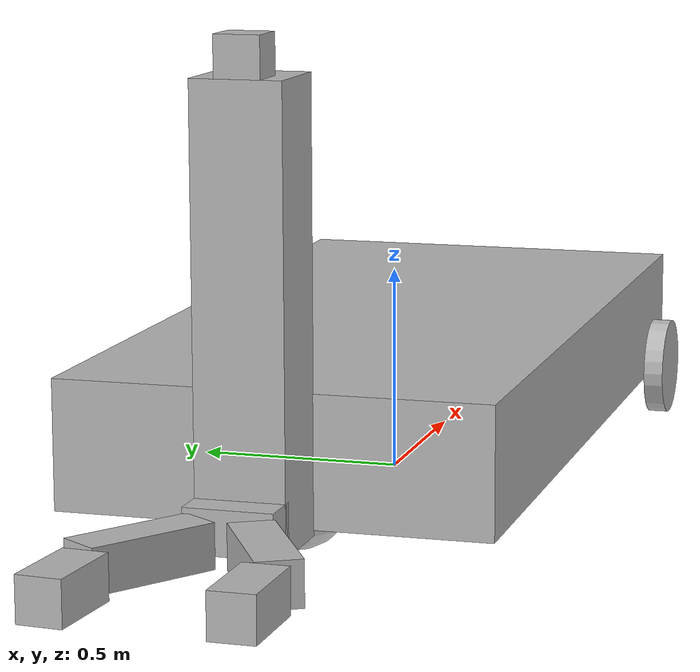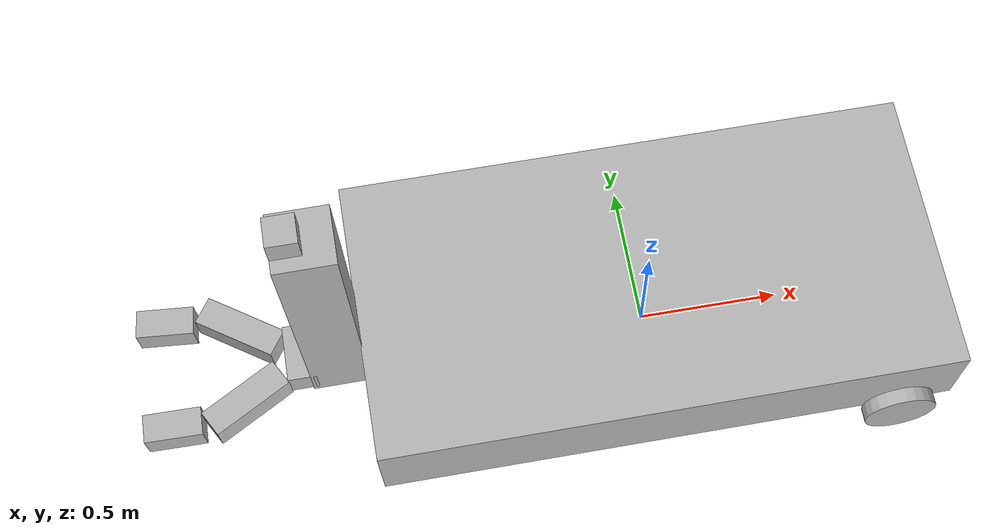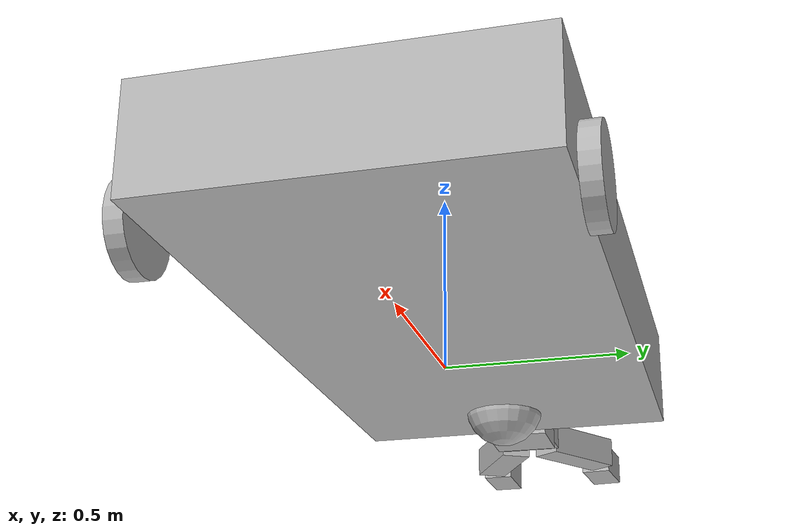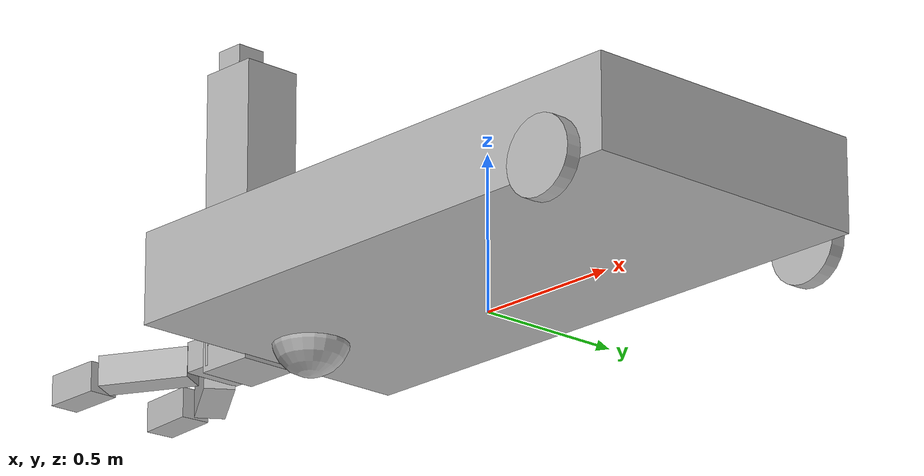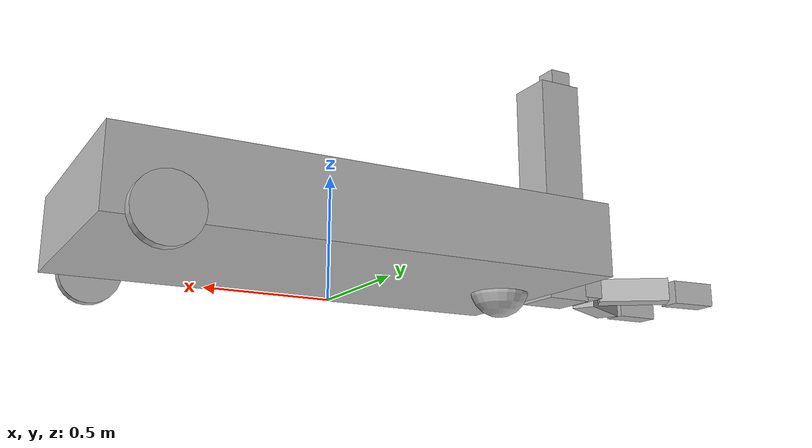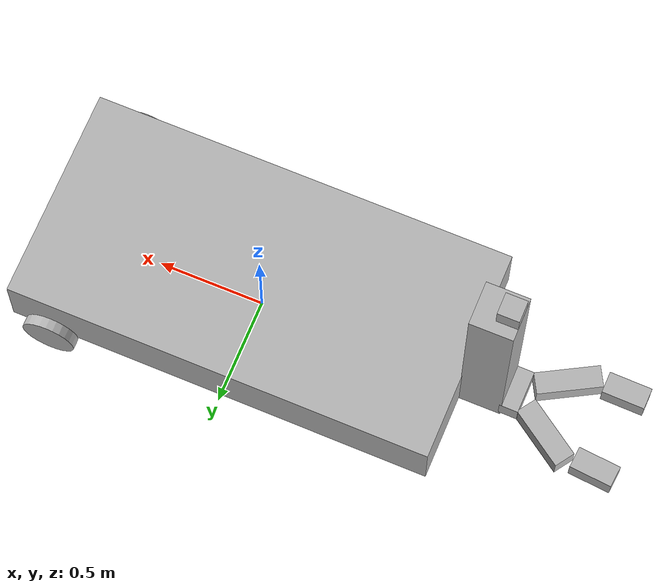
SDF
<?xml version='1.0'?>
<sdf version='1.6'>
  <model name='healthbot'>
    <link name='chassis'>
      <pose frame=''>-1e-06 -0 0.25 0 -0 0</pose>
      <inertial>
        <mass>20</mass>
        <pose frame=''>-0.1 0 -0.1 0 -0 0</pose>
        <inertia>
          <ixx>0.5</ixx>
          <iyy>1</iyy>
          <izz>0.1</izz>
          <ixy>0</ixy>
          <ixz>0</ixz>
          <iyz>0</iyz>
        </inertia>
      </inertial>
      <self_collide>0</self_collide>
      <enable_wind>0</enable_wind>
      <kinematic>0</kinematic>
      <visual name='visual'>
        <geometry>
          <box>
            <size>2 1 0.3</size>
          </box>
        </geometry>
        <material>
          <shader type='pixel'/>
          <emissive>0 0 0 1</emissive>
        </material>
        <pose frame=''>0 0 0 0 -0 0</pose>
        <transparency>0</transparency>
        <cast_shadows>1</cast_shadows>
      </visual>
      <visual name='caster_visual'>
        <pose frame=''>-0.8 0 -0.125 0 -0 0</pose>
        <geometry>
          <sphere>
            <radius>0.125</radius>
          </sphere>
        </geometry>
        <material>
          <shader type='pixel'/>
          <emissive>0 0 0 1</emissive>
        </material>
        <transparency>0</transparency>
        <cast_shadows>1</cast_shadows>
      </visual>
      <collision name='caster_collision'>
        <laser_retro>0</laser_retro>
        <max_contacts>10</max_contacts>
        <pose frame=''>-0.8 0 -0.125 0 -0 0</pose>
        <geometry>
          <sphere>
            <radius>0.125</radius>
          </sphere>
        </geometry>
        <surface>
          <friction>
            <ode>
              <mu>0</mu>
              <mu2>0</mu2>
              <fdir1>0 0 0</fdir1>
              <slip1>0</slip1>
              <slip2>0</slip2>
            </ode>
            <torsional>
              <coefficient>1</coefficient>
              <patch_radius>0</patch_radius>
              <surface_radius>0</surface_radius>
              <use_patch_radius>1</use_patch_radius>
              <ode>
                <slip>0</slip>
              </ode>
            </torsional>
          </friction>
          <bounce>
            <restitution_coefficient>0</restitution_coefficient>
            <threshold>1e+06</threshold>
          </bounce>
          <contact>
            <collide_without_contact>0</collide_without_contact>
            <collide_without_contact_bitmask>1</collide_without_contact_bitmask>
            <collide_bitmask>1</collide_bitmask>
            <ode>
              <soft_cfm>0</soft_cfm>
              <soft_erp>0.2</soft_erp>
              <kp>1e+13</kp>
              <kd>1</kd>
              <max_vel>0.01</max_vel>
              <min_depth>0</min_depth>
            </ode>
            <bullet>
              <split_impulse>1</split_impulse>
              <split_impulse_penetration_threshold>-0.01</split_impulse_penetration_threshold>
              <soft_cfm>0</soft_cfm>
              <soft_erp>0.2</soft_erp>
              <kp>1e+13</kp>
              <kd>1</kd>
            </bullet>
          </contact>
        </surface>
      </collision>
      <collision name='collision'>
        <laser_retro>0</laser_retro>
        <max_contacts>10</max_contacts>
        <pose frame=''>0 0 0 0 -0 0</pose>
        <geometry>
          <box>
            <size>2 1 0.3</size>
          </box>
        </geometry>
        <surface>
          <friction>
            <ode>
              <mu>1</mu>
              <mu2>1</mu2>
              <fdir1>0 0 0</fdir1>
              <slip1>0</slip1>
              <slip2>0</slip2>
            </ode>
            <torsional>
              <coefficient>1</coefficient>
              <patch_radius>0</patch_radius>
              <surface_radius>0</surface_radius>
              <use_patch_radius>1</use_patch_radius>
              <ode>
                <slip>0</slip>
              </ode>
            </torsional>
          </friction>
          <bounce>
            <restitution_coefficient>0</restitution_coefficient>
            <threshold>1e+06</threshold>
          </bounce>
          <contact>
            <collide_without_contact>0</collide_without_contact>
            <collide_without_contact_bitmask>1</collide_without_contact_bitmask>
            <collide_bitmask>1</collide_bitmask>
            <ode>
              <soft_cfm>0</soft_cfm>
              <soft_erp>0.2</soft_erp>
              <kp>1e+13</kp>
              <kd>1</kd>
              <max_vel>0.01</max_vel>
              <min_depth>0</min_depth>
            </ode>
            <bullet>
              <split_impulse>1</split_impulse>
              <split_impulse_penetration_threshold>-0.01</split_impulse_penetration_threshold>
              <soft_cfm>0</soft_cfm>
              <soft_erp>0.2</soft_erp>
              <kp>1e+13</kp>
              <kd>1</kd>
            </bullet>
          </contact>
        </surface>
      </collision>
    </link>

    <link name='camera'>
      <inertial>
        <mass>0.1</mass>
        <inertia>
          <ixx>0.000166667</ixx>
          <iyy>0.000166667</iyy>
          <izz>0.000166667</izz>
          <ixy>0</ixy>
          <ixz>0</ixz>
          <iyz>0</iyz>
        </inertia>
      </inertial>
      <sensor name='camera' type='camera'>
        <camera name='__default__'>
          <horizontal_fov>1.047</horizontal_fov>
          <image>
            <width>320</width>
            <height>240</height>
          </image>
          <clip>
            <near>0.1</near>
            <far>100</far>
          </clip>
        </camera>
 <plugin name="camera_controller" filename="libgazebo_ros_camera.so">
        <always_on>1</always_on>
        <update_rate>30</update_rate>
        <visualize>1</visualize>

 <cameraName>rrbot/camera1</cameraName>
        <imageTopicName>image_raw</imageTopicName>
        <cameraInfoTopicName>camera_info</cameraInfoTopicName>
<frameName>camera_link</frameName>
        <hackBaseline>0.07</hackBaseline>
        <distortionK1>0.0</distortionK1>
        <distortionK2>0.0</distortionK2>
        <distortionK3>0.0</distortionK3>
        <distortionT1>0.0</distortionT1>
        <distortionT2>0.0</distortionT2>

      </plugin>
      </sensor>
      <self_collide>0</self_collide>
      <enable_wind>0</enable_wind>
      <kinematic>0</kinematic>
      <pose frame=''>-1.14659 -0.004053 1.1283 0 0 -3.13928</pose>
      <visual name='visual'>
        <geometry>
          <box>
            <size>0.1 0.1 0.1</size>
          </box>
        </geometry>
        <pose frame=''>0 0 0 0 -0 0</pose>
        <transparency>0</transparency>
        <cast_shadows>1</cast_shadows>
      </visual>
      <collision name='collision'>
        <laser_retro>0</laser_retro>
        <max_contacts>10</max_contacts>
        <pose frame=''>0 0 0 0 -0 0</pose>
        <geometry>
          <box>
            <size>0.1 0.1 0.1</size>
          </box>
        </geometry>
        <surface>
          <friction>
            <ode>
              <mu>1</mu>
              <mu2>1</mu2>
              <fdir1>0 0 0</fdir1>
              <slip1>0</slip1>
              <slip2>0</slip2>
            </ode>
            <torsional>
              <coefficient>1</coefficient>
              <patch_radius>0</patch_radius>
              <surface_radius>0</surface_radius>
              <use_patch_radius>1</use_patch_radius>
              <ode>
                <slip>0</slip>
              </ode>
            </torsional>
          </friction>
          <bounce>
            <restitution_coefficient>0</restitution_coefficient>
            <threshold>1e+06</threshold>
          </bounce>
          <contact>
            <collide_without_contact>0</collide_without_contact>
            <collide_without_contact_bitmask>1</collide_without_contact_bitmask>
            <collide_bitmask>1</collide_bitmask>
            <ode>
              <soft_cfm>0</soft_cfm>
              <soft_erp>0.2</soft_erp>
              <kp>1e+13</kp>
              <kd>1</kd>
              <max_vel>0.01</max_vel>
              <min_depth>0</min_depth>
            </ode>
            <bullet>
              <split_impulse>1</split_impulse>
              <split_impulse_penetration_threshold>-0.01</split_impulse_penetration_threshold>
              <soft_cfm>0</soft_cfm>
              <soft_erp>0.2</soft_erp>
              <kp>1e+13</kp>
              <kd>1</kd>
            </bullet>
          </contact>
        </surface>
      </collision>
    </link>

    <link name='left_finger'>
      <pose frame=''>-1.41979 0.13564 0.14391 0 -0 0.974562</pose>
      <inertial>
        <inertia>
          <ixx>0.01</ixx>
          <ixy>0</ixy>
          <ixz>0</ixz>
          <iyy>0.01</iyy>
          <iyz>0</iyz>
          <izz>0.01</izz>
        </inertia>
        <mass>0.1</mass>
        <pose frame=''>0 0 0 0 -0 0</pose>
      </inertial>
      <self_collide>0</self_collide>
      <enable_wind>0</enable_wind>
      <kinematic>0</kinematic>
      <visual name='visual'>
        <geometry>
          <box>
            <size>0.1 0.3 0.1</size>
          </box>
        </geometry>
        <material>
          <script>
            <uri>__default__</uri>
            <name>__default__</name>
          </script>
          <shader type='pixel'/>
          <emissive>0 0 0 1</emissive>
        </material>
        <pose frame=''>0 0 0 0 -0 0</pose>
        <transparency>0</transparency>
        <cast_shadows>1</cast_shadows>
      </visual>
      <collision name='collision'>
        <laser_retro>0</laser_retro>
        <max_contacts>10</max_contacts>
        <pose frame=''>0 0 0 0 -0 0</pose>
        <geometry>
          <box>
            <size>0.1 0.3 0.1</size>
          </box>
        </geometry>
        <surface>
          <friction>
            <ode>
              <mu>1</mu>
              <mu2>1</mu2>
              <fdir1>0 0 0</fdir1>
              <slip1>0</slip1>
              <slip2>0</slip2>
            </ode>
            <torsional>
              <coefficient>1</coefficient>
              <patch_radius>0</patch_radius>
              <surface_radius>0</surface_radius>
              <use_patch_radius>1</use_patch_radius>
              <ode>
                <slip>0</slip>
              </ode>
            </torsional>
          </friction>
          <bounce>
            <restitution_coefficient>0</restitution_coefficient>
            <threshold>1e+06</threshold>
          </bounce>
          <contact>
            <collide_without_contact>0</collide_without_contact>
            <collide_without_contact_bitmask>1</collide_without_contact_bitmask>
            <collide_bitmask>1</collide_bitmask>
            <ode>
              <soft_cfm>0</soft_cfm>
              <soft_erp>0.2</soft_erp>
              <kp>1e+13</kp>
              <kd>1</kd>
              <max_vel>0.01</max_vel>
              <min_depth>0</min_depth>
            </ode>
            <bullet>
              <split_impulse>1</split_impulse>
              <split_impulse_penetration_threshold>-0.01</split_impulse_penetration_threshold>
              <soft_cfm>0</soft_cfm>
              <soft_erp>0.2</soft_erp>
              <kp>1e+13</kp>
              <kd>1</kd>
            </bullet>
          </contact>
        </surface>
      </collision>
    </link>
    <link name='left_finger_tip'>
      <pose frame=''>-1.6777 0.198064 0.14139 0 0 -1.65425</pose>
      <inertial>
        <inertia>
          <ixx>0.01</ixx>
          <ixy>0</ixy>
          <ixz>0</ixz>
          <iyy>0.01</iyy>
          <iyz>0</iyz>
          <izz>0.01</izz>
        </inertia>
        <mass>0.1</mass>
        <pose frame=''>0 0 0 0 -0 0</pose>
      </inertial>
      <self_collide>0</self_collide>
      <enable_wind>0</enable_wind>
      <kinematic>0</kinematic>
      <visual name='visual'>
        <geometry>
          <box>
            <size>0.1 0.2 0.1</size>
          </box>
        </geometry>
        <material>
          <script>
            <uri>__default__</uri>
            <name>__default__</name>
          </script>
          <shader type='pixel'/>
          <emissive>0 0 0 1</emissive>
        </material>
        <pose frame=''>0 0 0 0 -0 0</pose>
        <transparency>0</transparency>
        <cast_shadows>1</cast_shadows>
      </visual>
      <collision name='collision'>
        <laser_retro>0</laser_retro>
        <max_contacts>10</max_contacts>
        <pose frame=''>0 0 0 0 -0 0</pose>
        <geometry>
          <box>
            <size>0.1 0.2 0.1</size>
          </box>
        </geometry>
        <surface>
          <friction>
            <ode>
              <mu>1</mu>
              <mu2>1</mu2>
              <fdir1>0 0 0</fdir1>
              <slip1>0</slip1>
              <slip2>0</slip2>
            </ode>
            <torsional>
              <coefficient>1</coefficient>
              <patch_radius>0</patch_radius>
              <surface_radius>0</surface_radius>
              <use_patch_radius>1</use_patch_radius>
              <ode>
                <slip>0</slip>
              </ode>
            </torsional>
          </friction>
          <bounce>
            <restitution_coefficient>0</restitution_coefficient>
            <threshold>1e+06</threshold>
          </bounce>
          <contact>
            <collide_without_contact>0</collide_without_contact>
            <collide_without_contact_bitmask>1</collide_without_contact_bitmask>
            <collide_bitmask>1</collide_bitmask>
            <ode>
              <soft_cfm>0</soft_cfm>
              <soft_erp>0.2</soft_erp>
              <kp>1e+13</kp>
              <kd>1</kd>
              <max_vel>0.01</max_vel>
              <min_depth>0</min_depth>
            </ode>
            <bullet>
              <split_impulse>1</split_impulse>
              <split_impulse_penetration_threshold>-0.01</split_impulse_penetration_threshold>
              <soft_cfm>0</soft_cfm>
              <soft_erp>0.2</soft_erp>
              <kp>1e+13</kp>
              <kd>1</kd>
            </bullet>
          </contact>
        </surface>
      </collision>
    </link>
    <link name='left_wheel'>
      <pose frame=''>0.800001 0.535001 0.125 0.000485 1.5707 1.57117</pose>
      <self_collide>0</self_collide>
      <inertial>
        <pose frame=''>0 0 0 0 -0 0</pose>
        <inertia>
          <ixx>1</ixx>
          <ixy>0</ixy>
          <ixz>0</ixz>
          <iyy>1</iyy>
          <iyz>0</iyz>
          <izz>1</izz>
        </inertia>
        <mass>1</mass>
      </inertial>
      <enable_wind>0</enable_wind>
      <kinematic>0</kinematic>
      <visual name='visual'>
        <geometry>
          <cylinder>
            <radius>0.125</radius>
            <length>0.05</length>
          </cylinder>
        </geometry>
        <material>
          <shader type='pixel'/>
          <emissive>0 0 0 1</emissive>
        </material>
        <pose frame=''>0 0 0 0 -0 0</pose>
        <transparency>0</transparency>
        <cast_shadows>1</cast_shadows>
      </visual>
      <collision name='collision'>
        <laser_retro>0</laser_retro>
        <max_contacts>10</max_contacts>
        <pose frame=''>0 0 0 0 -0 0</pose>
        <geometry>
          <cylinder>
            <radius>0.125</radius>
            <length>0.05</length>
          </cylinder>
        </geometry>
        <surface>
          <friction>
            <ode>
              <mu>1</mu>
              <mu2>1</mu2>
              <fdir1>0 0 0</fdir1>
              <slip1>0</slip1>
              <slip2>0</slip2>
            </ode>
            <torsional>
              <coefficient>1</coefficient>
              <patch_radius>0</patch_radius>
              <surface_radius>0</surface_radius>
              <use_patch_radius>1</use_patch_radius>
              <ode>
                <slip>0</slip>
              </ode>
            </torsional>
          </friction>
          <bounce>
            <restitution_coefficient>0</restitution_coefficient>
            <threshold>1e+06</threshold>
          </bounce>
          <contact>
            <collide_without_contact>0</collide_without_contact>
            <collide_without_contact_bitmask>1</collide_without_contact_bitmask>
            <collide_bitmask>1</collide_bitmask>
            <ode>
              <soft_cfm>0</soft_cfm>
              <soft_erp>0.2</soft_erp>
              <kp>1e+13</kp>
              <kd>1</kd>
              <max_vel>0.01</max_vel>
              <min_depth>0</min_depth>
            </ode>
            <bullet>
              <split_impulse>1</split_impulse>
              <split_impulse_penetration_threshold>-0.01</split_impulse_penetration_threshold>
              <soft_cfm>0</soft_cfm>
              <soft_erp>0.2</soft_erp>
              <kp>1e+13</kp>
              <kd>1</kd>
            </bullet>
          </contact>
        </surface>
      </collision>
    </link>
    <link name='palm'>
      <pose frame=''>-1.2245 -8.7e-05 0.156799 0 -0 3.13532</pose>
      <inertial>
        <inertia>
          <ixx>0.01</ixx>
          <ixy>0</ixy>
          <ixz>0</ixz>
          <iyy>0.01</iyy>
          <iyz>0</iyz>
          <izz>0.01</izz>
        </inertia>
        <mass>0.5</mass>
        <pose frame=''>0 0 0 0 -0 0</pose>
      </inertial>
      <self_collide>0</self_collide>
      <enable_wind>0</enable_wind>
      <kinematic>0</kinematic>
      <visual name='visual'>
        <geometry>
          <box>
            <size>0.1 0.2 0.1</size>
          </box>
        </geometry>
        <material>
          <script>
            <uri>__default__</uri>
            <name>__default__</name>
          </script>
          <shader type='pixel'/>
          <emissive>0 0 0 1</emissive>
        </material>
        <pose frame=''>0 0 0 0 -0 0</pose>
        <transparency>0</transparency>
        <cast_shadows>1</cast_shadows>
      </visual>
      <collision name='collision'>
        <laser_retro>0</laser_retro>
        <max_contacts>10</max_contacts>
        <pose frame=''>0 0 0 0 -0 0</pose>
        <geometry>
          <box>
            <size>0.1 0.2 0.1</size>
          </box>
        </geometry>
        <surface>
          <friction>
            <ode>
              <mu>1</mu>
              <mu2>1</mu2>
              <fdir1>0 0 0</fdir1>
              <slip1>0</slip1>
              <slip2>0</slip2>
            </ode>
            <torsional>
              <coefficient>1</coefficient>
              <patch_radius>0</patch_radius>
              <surface_radius>0</surface_radius>
              <use_patch_radius>1</use_patch_radius>
              <ode>
                <slip>0</slip>
              </ode>
            </torsional>
          </friction>
          <bounce>
            <restitution_coefficient>0</restitution_coefficient>
            <threshold>1e+06</threshold>
          </bounce>
          <contact>
            <collide_without_contact>0</collide_without_contact>
            <collide_without_contact_bitmask>1</collide_without_contact_bitmask>
            <collide_bitmask>1</collide_bitmask>
            <ode>
              <soft_cfm>0</soft_cfm>
              <soft_erp>0.2</soft_erp>
              <kp>1e+13</kp>
              <kd>1</kd>
              <max_vel>0.01</max_vel>
              <min_depth>0</min_depth>
            </ode>
            <bullet>
              <split_impulse>1</split_impulse>
              <split_impulse_penetration_threshold>-0.01</split_impulse_penetration_threshold>
              <soft_cfm>0</soft_cfm>
              <soft_erp>0.2</soft_erp>
              <kp>1e+13</kp>
              <kd>1</kd>
            </bullet>
          </contact>
        </surface>
      </collision>
    </link>
    <link name='right_finger'>
      <pose frame=''>-1.42662 -0.131687 0.144156 -0 -0 -1.06078</pose>
      <inertial>
        <inertia>
          <ixx>0.01</ixx>
          <ixy>0</ixy>
          <ixz>0</ixz>
          <iyy>0.01</iyy>
          <iyz>0</iyz>
          <izz>0.01</izz>
        </inertia>
        <mass>0.1</mass>
        <pose frame=''>0 0 0 0 -0 0</pose>
      </inertial>
      <self_collide>0</self_collide>
      <enable_wind>0</enable_wind>
      <kinematic>0</kinematic>
      <visual name='visual'>
        <geometry>
          <box>
            <size>0.1 0.3 0.1</size>
          </box>
        </geometry>
        <material>
          <script>
            <uri>__default__</uri>
            <name>__default__</name>
          </script>
          <shader type='pixel'/>
        </material>
        <pose frame=''>0 0 0 0 -0 0</pose>
        <transparency>0</transparency>
        <cast_shadows>1</cast_shadows>
      </visual>
      <collision name='collision'>
        <laser_retro>0</laser_retro>
        <max_contacts>10</max_contacts>
        <pose frame=''>0 0 0 0 -0 0</pose>
        <geometry>
          <box>
            <size>0.1 0.3 0.1</size>
          </box>
        </geometry>
        <surface>
          <friction>
            <ode>
              <mu>1</mu>
              <mu2>1</mu2>
              <fdir1>0 0 0</fdir1>
              <slip1>0</slip1>
              <slip2>0</slip2>
            </ode>
            <torsional>
              <coefficient>1</coefficient>
              <patch_radius>0</patch_radius>
              <surface_radius>0</surface_radius>
              <use_patch_radius>1</use_patch_radius>
              <ode>
                <slip>0</slip>
              </ode>
            </torsional>
          </friction>
          <bounce>
            <restitution_coefficient>0</restitution_coefficient>
            <threshold>1e+06</threshold>
          </bounce>
          <contact>
            <collide_without_contact>0</collide_without_contact>
            <collide_without_contact_bitmask>1</collide_without_contact_bitmask>
            <collide_bitmask>1</collide_bitmask>
            <ode>
              <soft_cfm>0</soft_cfm>
              <soft_erp>0.2</soft_erp>
              <kp>1e+13</kp>
              <kd>1</kd>
              <max_vel>0.01</max_vel>
              <min_depth>0</min_depth>
            </ode>
            <bullet>
              <split_impulse>1</split_impulse>
              <split_impulse_penetration_threshold>-0.01</split_impulse_penetration_threshold>
              <soft_cfm>0</soft_cfm>
              <soft_erp>0.2</soft_erp>
              <kp>1e+13</kp>
              <kd>1</kd>
            </bullet>
          </contact>
        </surface>
      </collision>
    </link>
    <link name='right_finger_tip'>
      <pose frame=''>-1.68284 -0.185107 0.143045 0 0 -1.584</pose>
      <inertial>
        <inertia>
          <ixx>0.01</ixx>
          <ixy>0</ixy>
          <ixz>0</ixz>
          <iyy>0.01</iyy>
          <iyz>0</iyz>
          <izz>0.01</izz>
        </inertia>
        <mass>0.1</mass>
        <pose frame=''>0 0 0 0 -0 0</pose>
      </inertial>
      <self_collide>0</self_collide>
      <enable_wind>0</enable_wind>
      <kinematic>0</kinematic>
      <visual name='visual'>
        <geometry>
          <box>
            <size>0.1 0.2 0.1</size>
          </box>
        </geometry>
        <material>
          <script>
            <uri>__default__</uri>
            <name>__default__</name>
          </script>
          <shader type='pixel'/>
        </material>
        <pose frame=''>0 0 0 0 -0 0</pose>
        <transparency>0</transparency>
        <cast_shadows>1</cast_shadows>
      </visual>
      <collision name='collision'>
        <laser_retro>0</laser_retro>
        <max_contacts>10</max_contacts>
        <pose frame=''>0 0 0 0 -0 0</pose>
        <geometry>
          <box>
            <size>0.1 0.2 0.1</size>
          </box>
        </geometry>
        <surface>
          <friction>
            <ode>
              <mu>1</mu>
              <mu2>1</mu2>
              <fdir1>0 0 0</fdir1>
              <slip1>0</slip1>
              <slip2>0</slip2>
            </ode>
            <torsional>
              <coefficient>1</coefficient>
              <patch_radius>0</patch_radius>
              <surface_radius>0</surface_radius>
              <use_patch_radius>1</use_patch_radius>
              <ode>
                <slip>0</slip>
              </ode>
            </torsional>
          </friction>
          <bounce>
            <restitution_coefficient>0</restitution_coefficient>
            <threshold>1e+06</threshold>
          </bounce>
          <contact>
            <collide_without_contact>0</collide_without_contact>
            <collide_without_contact_bitmask>1</collide_without_contact_bitmask>
            <collide_bitmask>1</collide_bitmask>
            <ode>
              <soft_cfm>0</soft_cfm>
              <soft_erp>0.2</soft_erp>
              <kp>1e+13</kp>
              <kd>1</kd>
              <max_vel>0.01</max_vel>
              <min_depth>0</min_depth>
            </ode>
            <bullet>
              <split_impulse>1</split_impulse>
              <split_impulse_penetration_threshold>-0.01</split_impulse_penetration_threshold>
              <soft_cfm>0</soft_cfm>
              <soft_erp>0.2</soft_erp>
              <kp>1e+13</kp>
              <kd>1</kd>
            </bullet>
          </contact>
        </surface>
      </collision>
    </link>
    <link name='right_wheel'>
      <pose frame=''>0.800001 -0.535 0.125 0.000485 1.5707 1.57117</pose>
      <self_collide>0</self_collide>
      <inertial>
        <pose frame=''>0 0 0 0 -0 0</pose>
        <inertia>
          <ixx>1</ixx>
          <ixy>0</ixy>
          <ixz>0</ixz>
          <iyy>1</iyy>
          <iyz>0</iyz>
          <izz>1</izz>
        </inertia>
        <mass>1</mass>
      </inertial>
      <enable_wind>0</enable_wind>
      <kinematic>0</kinematic>
      <visual name='visual'>
        <geometry>
          <cylinder>
            <radius>0.125</radius>
            <length>0.05</length>
          </cylinder>
        </geometry>
        <material>
          <shader type='pixel'/>
        </material>
        <pose frame=''>0 0 0 0 -0 0</pose>
        <transparency>0</transparency>
        <cast_shadows>1</cast_shadows>
      </visual>
      <collision name='collision'>
        <laser_retro>0</laser_retro>
        <max_contacts>10</max_contacts>
        <pose frame=''>0 0 0 0 -0 0</pose>
        <geometry>
          <cylinder>
            <radius>0.125</radius>
            <length>0.05</length>
          </cylinder>
        </geometry>
        <surface>
          <friction>
            <ode>
              <mu>1</mu>
              <mu2>1</mu2>
              <fdir1>0 0 0</fdir1>
              <slip1>0</slip1>
              <slip2>0</slip2>
            </ode>
            <torsional>
              <coefficient>1</coefficient>
              <patch_radius>0</patch_radius>
              <surface_radius>0</surface_radius>
              <use_patch_radius>1</use_patch_radius>
              <ode>
                <slip>0</slip>
              </ode>
            </torsional>
          </friction>
          <bounce>
            <restitution_coefficient>0</restitution_coefficient>
            <threshold>1e+06</threshold>
          </bounce>
          <contact>
            <collide_without_contact>0</collide_without_contact>
            <collide_without_contact_bitmask>1</collide_without_contact_bitmask>
            <collide_bitmask>1</collide_bitmask>
            <ode>
              <soft_cfm>0</soft_cfm>
              <soft_erp>0.2</soft_erp>
              <kp>1e+13</kp>
              <kd>1</kd>
              <max_vel>0.01</max_vel>
              <min_depth>0</min_depth>
            </ode>
            <bullet>
              <split_impulse>1</split_impulse>
              <split_impulse_penetration_threshold>-0.01</split_impulse_penetration_threshold>
              <soft_cfm>0</soft_cfm>
              <soft_erp>0.2</soft_erp>
              <kp>1e+13</kp>
              <kd>1</kd>
            </bullet>
          </contact>
        </surface>
      </collision>
    </link>
    <link name='riser'>
      <pose frame=''>-1.09676 7e-06 0.586937 0 0 -3.13784</pose>
      <inertial>
        <pose frame=''>0 0 -0.5 0 -0 0</pose>
        <inertia>
          <ixx>0.01</ixx>
          <ixy>0</ixy>
          <ixz>0</ixz>
          <iyy>0.01</iyy>
          <iyz>0</iyz>
          <izz>0.01</izz>
        </inertia>
        <mass>10</mass>
      </inertial>
      <self_collide>0</self_collide>
      <enable_wind>0</enable_wind>
      <kinematic>0</kinematic>
      <visual name='visual'>
        <geometry>
          <box>
            <size>0.2 0.2 1</size>
          </box>
        </geometry>
        <material>
          <script>
            <uri>__default__</uri>
            <name>__default__</name>
          </script>
          <shader type='pixel'/>
          <emissive>0 0 0 1</emissive>
        </material>
        <pose frame=''>0 0 0 0 -0 0</pose>
        <transparency>0</transparency>
        <cast_shadows>1</cast_shadows>
      </visual>
      <collision name='collision'>
        <laser_retro>0</laser_retro>
        <max_contacts>10</max_contacts>
        <pose frame=''>0 0 0 0 -0 0</pose>
        <geometry>
          <box>
            <size>0.2 0.2 1</size>
          </box>
        </geometry>
        <surface>
          <friction>
            <ode>
              <mu>1</mu>
              <mu2>1</mu2>
              <fdir1>0 0 0</fdir1>
              <slip1>0</slip1>
              <slip2>0</slip2>
            </ode>
            <torsional>
              <coefficient>1</coefficient>
              <patch_radius>0</patch_radius>
              <surface_radius>0</surface_radius>
              <use_patch_radius>1</use_patch_radius>
              <ode>
                <slip>0</slip>
              </ode>
            </torsional>
          </friction>
          <bounce>
            <restitution_coefficient>0</restitution_coefficient>
            <threshold>1e+06</threshold>
          </bounce>
          <contact>
            <collide_without_contact>0</collide_without_contact>
            <collide_without_contact_bitmask>1</collide_without_contact_bitmask>
            <collide_bitmask>1</collide_bitmask>
            <ode>
              <soft_cfm>0</soft_cfm>
              <soft_erp>0.2</soft_erp>
              <kp>1e+13</kp>
              <kd>1</kd>
              <max_vel>0.01</max_vel>
              <min_depth>0</min_depth>
            </ode>
            <bullet>
              <split_impulse>1</split_impulse>
              <split_impulse_penetration_threshold>-0.01</split_impulse_penetration_threshold>
              <soft_cfm>0</soft_cfm>
              <soft_erp>0.2</soft_erp>
              <kp>1e+13</kp>
              <kd>1</kd>
            </bullet>
          </contact>
        </surface>
      </collision>
    </link>
    <joint name='chassis_JOINT_0' type='fixed'>
      <parent>riser</parent>
      <child>camera</child>
      <pose frame=''>0 0 0 0 -0 0</pose>
      <physics>
        <ode>
          <limit>
            <cfm>0</cfm>
            <erp>0.2</erp>
          </limit>
          <suspension>
            <cfm>0</cfm>
            <erp>0.2</erp>
          </suspension>
        </ode>
      </physics>
    </joint>
    <joint name='chassis_gripper_fixed_joint' type='fixed'>
      <parent>chassis</parent>
      <child>riser</child>
      <pose frame=''>0 0 0 0 -0 0</pose>
      <physics>
        <ode>
          <limit>
            <cfm>0</cfm>
            <erp>0.2</erp>
          </limit>
          <suspension>
            <cfm>0</cfm>
            <erp>0.2</erp>
          </suspension>
        </ode>
      </physics>
    </joint>
    <joint name='joint_left_finger' type='revolute'>
      <parent>palm</parent>
      <child>left_finger</child>
      <pose frame=''>0 -0.15 0 0 -0 0</pose>
      <axis>
        <xyz>0 0 1</xyz>
        <use_parent_model_frame>0</use_parent_model_frame>
        <limit>
          <lower>-0.4</lower>
          <upper>0.4</upper>
          <effort>-1</effort>
          <velocity>-1</velocity>
        </limit>
        <dynamics>
          <spring_reference>0</spring_reference>
          <spring_stiffness>0</spring_stiffness>
          <damping>0</damping>
          <friction>0</friction>
        </dynamics>
      </axis>
      <physics>
        <ode>
          <limit>
            <cfm>0</cfm>
            <erp>0.2</erp>
          </limit>
          <suspension>
            <cfm>0</cfm>
            <erp>0.2</erp>
          </suspension>
        </ode>
      </physics>
    </joint>
    <joint name='joint_left_finger_tip' type='revolute'>
      <parent>left_finger</parent>
      <child>left_finger_tip</child>
      <pose frame=''>0 0.1 0 0 -0 0</pose>
      <axis>
        <xyz>0 0 1</xyz>
        <use_parent_model_frame>0</use_parent_model_frame>
        <limit>
          <lower>-0.4</lower>
          <upper>0.4</upper>
          <effort>-1</effort>
          <velocity>-1</velocity>
        </limit>
        <dynamics>
          <spring_reference>0</spring_reference>
          <spring_stiffness>0</spring_stiffness>
          <damping>0</damping>
          <friction>0</friction>
        </dynamics>
      </axis>
      <physics>
        <ode>
          <limit>
            <cfm>0</cfm>
            <erp>0.2</erp>
          </limit>
          <suspension>
            <cfm>0</cfm>
            <erp>0.2</erp>
          </suspension>
        </ode>
      </physics>
    </joint>
    <joint name='joint_right_finger' type='revolute'>
      <parent>palm</parent>
      <child>right_finger</child>
      <pose frame=''>0 0.15 0 0 -0 0</pose>
      <axis>
        <xyz>0 0 1</xyz>
        <use_parent_model_frame>0</use_parent_model_frame>
        <limit>
          <lower>-0.4</lower>
          <upper>0.4</upper>
          <effort>-1</effort>
          <velocity>-1</velocity>
        </limit>
        <dynamics>
          <spring_reference>0</spring_reference>
          <spring_stiffness>0</spring_stiffness>
          <damping>0</damping>
          <friction>0</friction>
        </dynamics>
      </axis>
      <physics>
        <ode>
          <limit>
            <cfm>0</cfm>
            <erp>0.2</erp>
          </limit>
          <suspension>
            <cfm>0</cfm>
            <erp>0.2</erp>
          </suspension>
        </ode>
      </physics>
    </joint>
    <joint name='joint_right_finger_tip' type='revolute'>
      <parent>right_finger</parent>
      <child>right_finger_tip</child>
      <pose frame=''>0 0.1 0 0 -0 0</pose>
      <axis>
        <xyz>0 0 1</xyz>
        <use_parent_model_frame>0</use_parent_model_frame>
        <limit>
          <lower>-0.4</lower>
          <upper>0.4</upper>
          <effort>-1</effort>
          <velocity>-1</velocity>
        </limit>
        <dynamics>
          <spring_reference>0</spring_reference>
          <spring_stiffness>0</spring_stiffness>
          <damping>0</damping>
          <friction>0</friction>
        </dynamics>
      </axis>
      <physics>
        <ode>
          <limit>
            <cfm>0</cfm>
            <erp>0.2</erp>
          </limit>
          <suspension>
            <cfm>0</cfm>
            <erp>0.2</erp>
          </suspension>
        </ode>
      </physics>
    </joint>
    <joint name='left_wheel_hinge' type='revolute'>
      <parent>chassis</parent>
      <child>left_wheel</child>
      <pose frame=''>0 0 -0.03 0 -0 0</pose>
      <axis>
        <xyz>9.6e-05 9.6e-05 1</xyz>
        <use_parent_model_frame>0</use_parent_model_frame>
        <limit>
          <lower>-1e+16</lower>
          <upper>1e+16</upper>
          <effort>-1</effort>
          <velocity>-1</velocity>
        </limit>
        <dynamics>
          <spring_reference>0</spring_reference>
          <spring_stiffness>0</spring_stiffness>
          <damping>0</damping>
          <friction>0</friction>
        </dynamics>
      </axis>
      <physics>
        <ode>
          <limit>
            <cfm>0</cfm>
            <erp>0.2</erp>
          </limit>
          <suspension>
            <cfm>0</cfm>
            <erp>0.2</erp>
          </suspension>
        </ode>
      </physics>
    </joint>
    <joint name='palm_riser' type='prismatic'>
      <parent>riser</parent>
      <child>palm</child>
      <pose frame=''>0 0 0 0 -0 0</pose>
      <axis>
        <xyz>0 0 1</xyz>
        <use_parent_model_frame>0</use_parent_model_frame>
        <limit>
          <lower>0</lower>
          <upper>0.9</upper>
          <effort>-1</effort>
          <velocity>-1</velocity>
        </limit>
        <dynamics>
          <spring_reference>0</spring_reference>
          <spring_stiffness>0</spring_stiffness>
          <damping>0</damping>
          <friction>0</friction>
        </dynamics>
      </axis>
      <physics>
        <ode>
          <limit>
            <cfm>0</cfm>
            <erp>0.2</erp>
          </limit>
          <suspension>
            <cfm>0</cfm>
            <erp>0.2</erp>
          </suspension>
        </ode>
      </physics>
    </joint>
    <joint name='right_wheel_hinge' type='revolute'>
      <parent>chassis</parent>
      <child>right_wheel</child>
      <pose frame=''>0 0 0.03 0 -0 0</pose>
      <axis>
        <xyz>9.6e-05 9.6e-05 1</xyz>
        <use_parent_model_frame>0</use_parent_model_frame>
        <limit>
          <lower>-1e+16</lower>
          <upper>1e+16</upper>
          <effort>-1</effort>
          <velocity>-1</velocity>
        </limit>
        <dynamics>
          <spring_reference>0</spring_reference>
          <spring_stiffness>0</spring_stiffness>
          <damping>0</damping>
          <friction>0</friction>
        </dynamics>
      </axis>
      <physics>
        <ode>
          <limit>
            <cfm>0</cfm>
            <erp>0.2</erp>
          </limit>
          <suspension>
            <cfm>0</cfm>
            <erp>0.2</erp>
          </suspension>
        </ode>
      </physics>
    </joint>
    <static>0</static>
    <allow_auto_disable>1</allow_auto_disable>
    <plugin name='differential_drive_controller' filename='libgazebo_ros_diff_drive.so'>
      <alwaysOn>1</alwaysOn>
      <updateRate>20</updateRate>
      <leftJoint>left_wheel_hinge</leftJoint>
      <rightJoint>right_wheel_hinge</rightJoint>
      <wheelSeparation>0.11</wheelSeparation>
      <wheelDiameter>0.125*2</wheelDiameter>
      <torque>20</torque>
      <commandTopic>cmd_vel</commandTopic>
      <odometryTopic>odom</odometryTopic>
      <odometryFrame>odom</odometryFrame>
      <robotBaseFrame>base_footprint</robotBaseFrame>
      <robotNamespace>/</robotNamespace>
    </plugin>

  </model>
</sdf>
